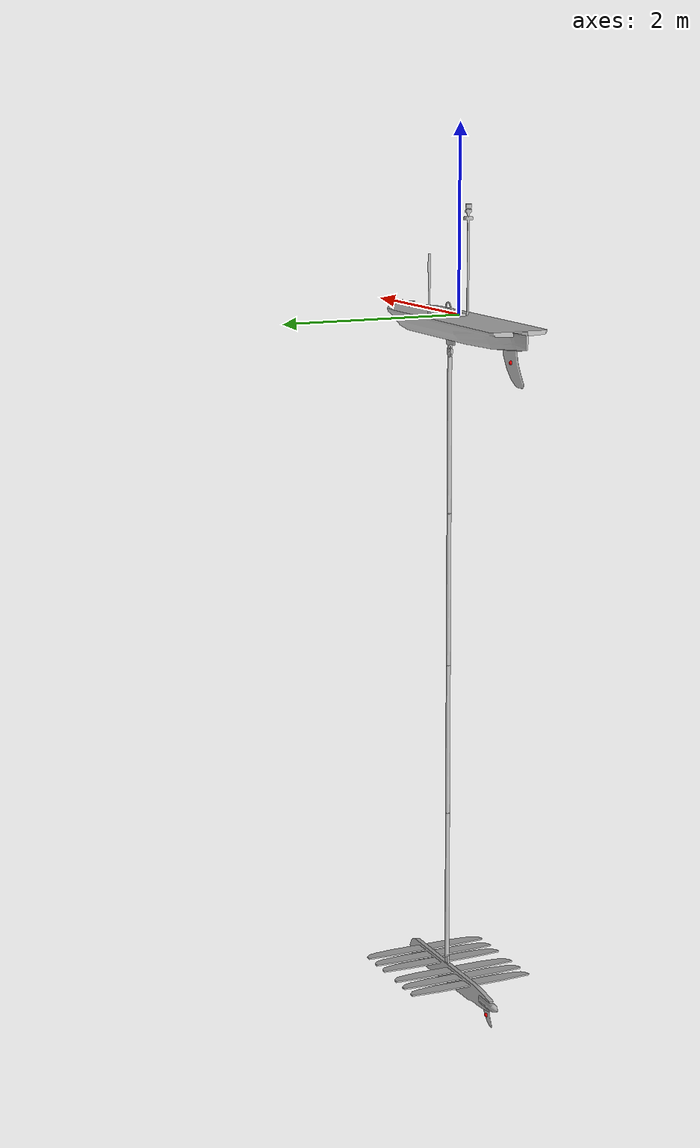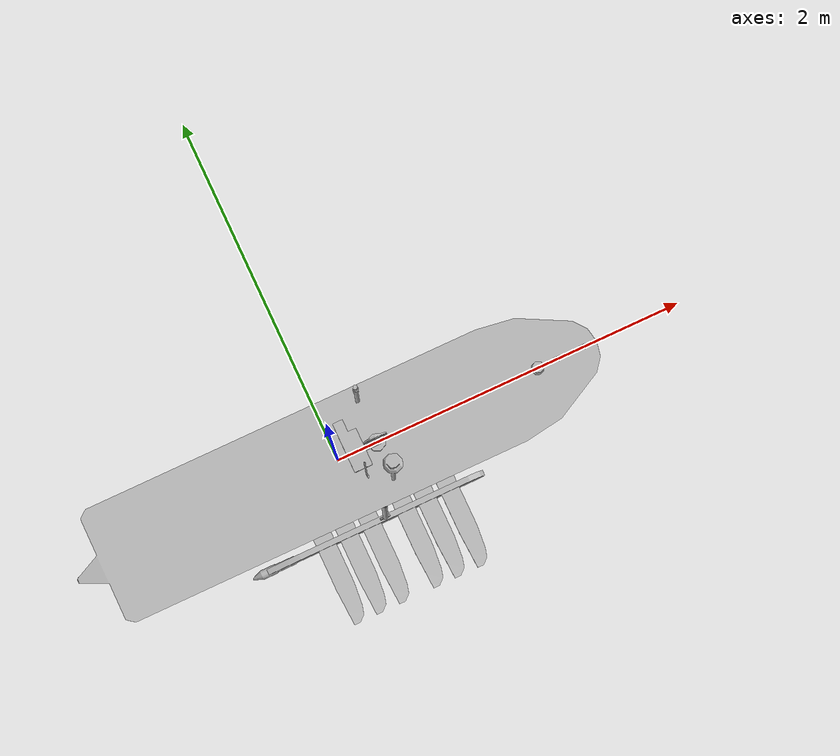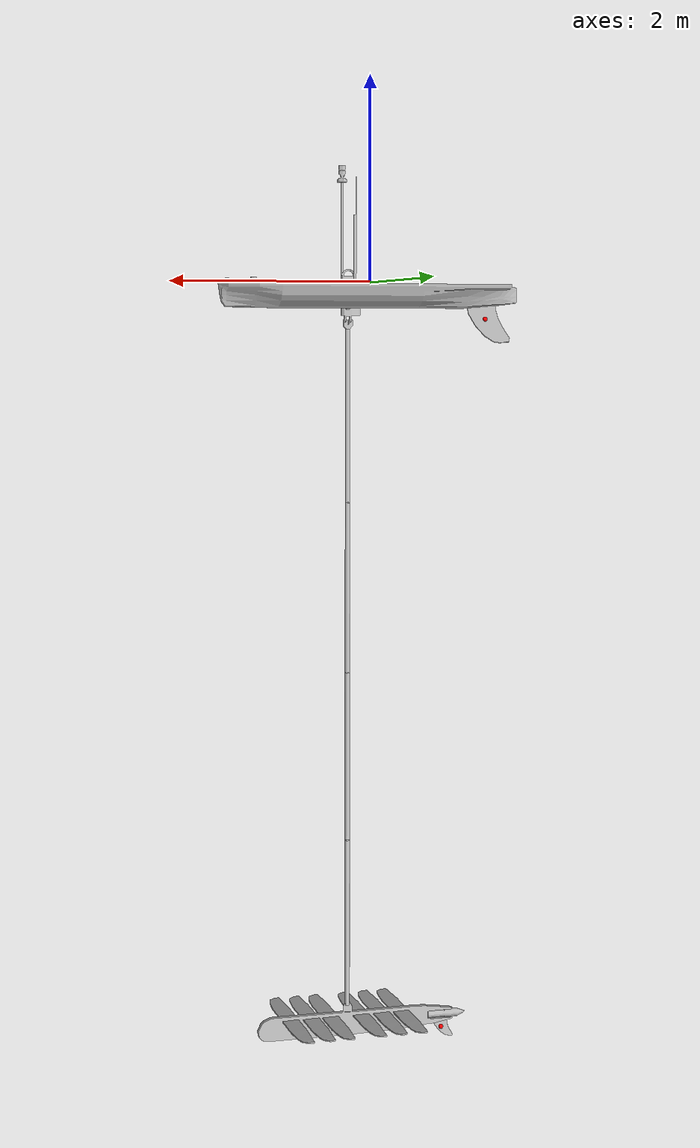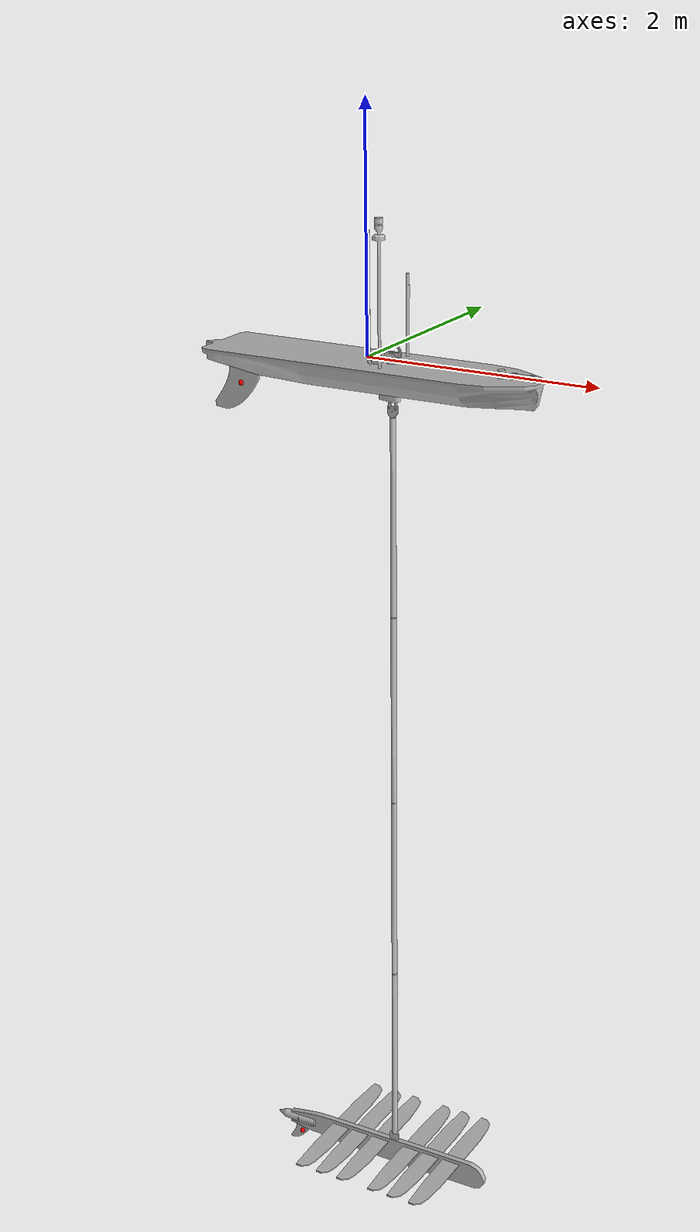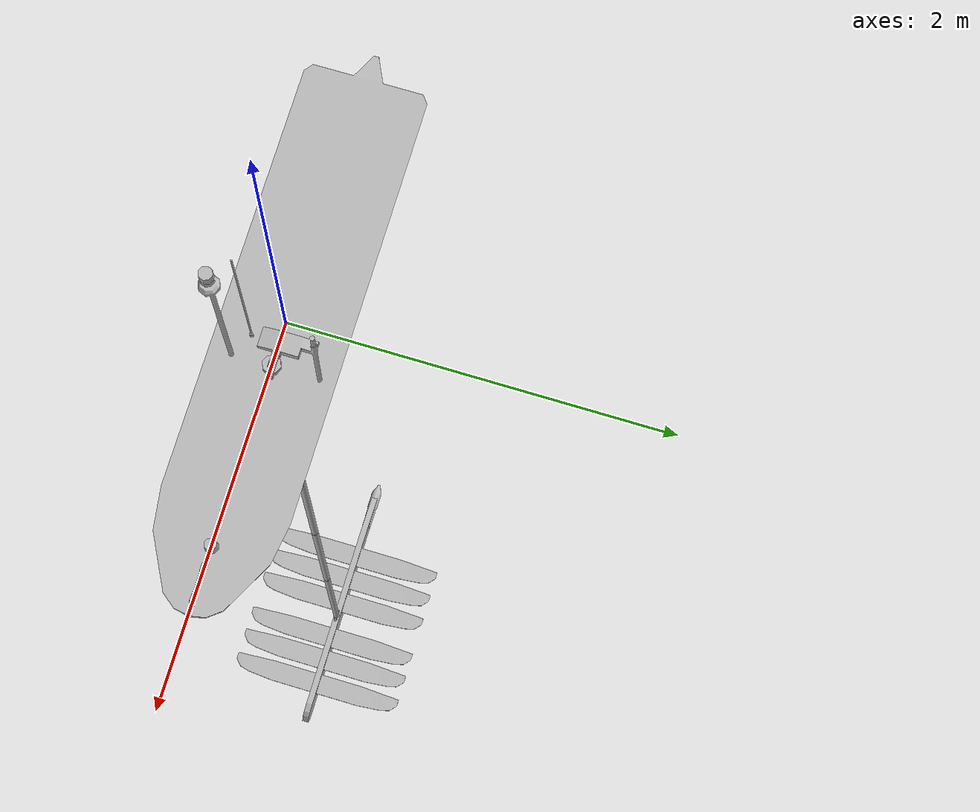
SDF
<?xml version="1.0"?>

<sdf version="1.9">
  <model name="wave_glider">

    <link name="wave_glider_float_link">
      <inertial>
        <pose>0 0 -0.13 0 0 0</pose>
          <mass>71</mass>
          <inertia>
            <ixx>4.194916667</ixx>
            <ixy>0</ixy>
            <ixz>0</ixz>
            <iyy>55.35278333</iyy>
            <iyz>0</iyz>
            <izz>58.92171667</izz>
          </inertia>
      </inertial>
      <collision name="collision">
        <geometry>
          <mesh>
            <scale>1.0 1.0 1.0</scale>
            <uri>model://glider_wave/mesh/wave_glider_hull_collision.stl</uri>
          </mesh>
        </geometry>
      </collision>
      <collision name="fin_collision">
        <geometry>
          <mesh>
            <scale>1.0 1.0 1.0</scale>
            <uri>model://glider_wave/mesh/wave_glider_fin_collision.stl</uri>
          </mesh>
        </geometry>
      </collision>
      <visual name="visual">
        <pose>0 0 0 0 0 0</pose>
        <geometry>
          <mesh>
            <scale>1.0 1.0 1.0</scale>
            <uri>model://glider_wave/mesh/wave_glider_hull.dae</uri>
          </mesh>
        </geometry>
      </visual>
      <visual name="fin_visual">
        <pose>0 0 0 0 0 0</pose>
        <geometry>
          <mesh>
            <scale>1.0 1.0 1.0</scale>
            <uri>model://glider_wave/mesh/wave_glider_fin.dae</uri>
          </mesh>
        </geometry>
      </visual>
      <visual name="sensors_visual">
        <geometry>
          <mesh>
            <scale>1.0 1.0 1.0</scale>
            <uri>model://glider_wave/mesh/wave_glider_sensors.dae</uri>
          </mesh>
        </geometry>
      </visual>
      <visual name="umbilical_connection_visual">
        <geometry>
          <mesh>
            <scale>1.0 1.0 1.0</scale>
            <uri>model://glider_wave/mesh/wave_glider_umbilical_connection.dae</uri>
          </mesh>
        </geometry>
      </visual>
      <!-- leave for debugging centre of pressure -->
      <visual name="cp_fin_visual">
        <pose>-1.195 0 -0.357 0 0 0</pose>
        <geometry>
          <sphere>
            <radius>0.025</radius>
          </sphere>
        </geometry>
        <material>
          <ambient>1 0 0 1</ambient>
          <diffuse>1 0 0 1</diffuse>
          <specular>0.1 0.1 0.1 1</specular>
        </material>
      </visual>

      <sensor name="navsat_sensor" type="navsat">
        <always_on>1</always_on>
        <update_rate>30</update_rate>
      </sensor>

      <sensor name="imu_sensor" type="imu">
        <pose>0 0 0 3.141593 0 0</pose>
        <always_on>1</always_on>
        <update_rate>1000</update_rate>
      </sensor>
    </link>

    <link name="wave_glider_umbilical_joint_link">
      <inertial>
        <pose>0.23 0 -0.38 0 0 0</pose>
        <mass>0.5</mass>
        <inertia>
          <ixx>0.001</ixx>
          <ixy>0</ixy>
          <ixz>0</ixz>
          <iyy>0.001</iyy>
          <iyz>0</iyz>
          <izz>0.001</izz>
        </inertia>
      </inertial>
      <collision name="collision">
        <geometry>
          <box>
            <size>0.2 0.2 0.2</size>
          </box>
        </geometry>
      </collision>
      <visual name="visual">
        <geometry>
          <mesh>
            <scale>1.0 1.0 1.0</scale>
            <uri>model://glider_wave/mesh/wave_glider_umbilical_joint.dae</uri>
          </mesh>
        </geometry>
      </visual>
    </link>
    <joint name="wave_glider_umbilical_joint_joint" type="revolute">
        <pose>0.23 0 -0.38 0 0 0</pose>
        <child>wave_glider_umbilical_joint_link</child>
        <parent>wave_glider_float_link</parent>
        <axis>
          <limit>
            <lower>-0.8</lower>
            <upper>0.8</upper>
          </limit>
          <dynamics>
            <damping>0.1</damping>
          </dynamics>
          <xyz>1 0 0</xyz>
        </axis>
    </joint>

    <link name="wave_glider_umbilical1_link">
      <pose>0.23 0 -1.31 0 0 0</pose>
      <inertial>
          <mass>1</mass>
          <inertia>
            <ixx>0.240989583</ixx>
            <ixy>0</ixy>
            <ixz>0</ixz>
            <iyy>0.240989583</iyy>
            <iyz>0</iyz>
            <izz>0.0003125</izz>
          </inertia>
      </inertial>
      <collision name="collision">
        <geometry>
          <cylinder>
            <radius>0.024</radius>
            <length>1.7</length>
          </cylinder>
        </geometry>
      </collision>
      <visual name="visual">
        <geometry>
          <cylinder>
            <radius>0.024</radius>
            <length>1.7</length>
          </cylinder>
        </geometry>
      </visual>
    </link>
    <joint name="wave_glider_umbilical1_joint" type="revolute">
        <pose>0 0 0.85 0 0 0</pose>
        <child>wave_glider_umbilical1_link</child>
        <parent>wave_glider_umbilical_joint_joint</parent>
        <axis>
          <limit>
            <lower>-0.8</lower>
            <upper>0.8</upper>
          </limit>
          <dynamics>
            <damping>0.5</damping>
          </dynamics>
          <xyz>0 1 0</xyz>
        </axis>
    </joint>

    <link name="wave_glider_spring1_link">
      <pose relative_to="wave_glider_umbilical1_link">0 0 -0.85 0 0 0</pose>
      <inertial>
          <mass>0.1</mass>
          <inertia>
            <ixx>0.001</ixx>
            <ixy>0</ixy>
            <ixz>0</ixz>
            <iyy>0.001</iyy>
            <iyz>0</iyz>
            <izz>0.001</izz>
          </inertia>
      </inertial>
      <collision name="collision">
        <geometry>
          <cylinder>
            <radius>0.024</radius>
            <length>0.01</length>
          </cylinder>
        </geometry>
      </collision>
      <visual name="visual">
        <geometry>
          <cylinder>
            <radius>0.024</radius>
            <length>0.01</length>
          </cylinder>
        </geometry>
      </visual>
    </link>
    <joint name="wave_glider_spring1_joint" type="prismatic">
        <pose>0 0 0 0 0 0</pose>
        <child>wave_glider_spring1_link</child>
        <parent>wave_glider_umbilical1_link</parent>
        <axis>
          <limit>
            <lower>-0.25</lower>
            <upper>0.25</upper>
          </limit>
          <dynamics>
            <damping>0.01</damping>
            <spring_stiffness>1</spring_stiffness>
          </dynamics>
          <xyz>0 0 1</xyz>
        </axis>
    </joint>

    <link name="wave_glider_umbilical2_link">
      <pose relative_to="wave_glider_umbilical1_link">0 0 -1.7 0 0 0</pose>
      <inertial>
          <mass>1</mass>
          <inertia>
            <ixx>0.240989583</ixx>
            <ixy>0</ixy>
            <ixz>0</ixz>
            <iyy>0.240989583</iyy>
            <iyz>0</iyz>
            <izz>0.0003125</izz>
          </inertia>
      </inertial>
      <collision name="collision">
        <geometry>
          <cylinder>
            <radius>0.024</radius>
            <length>1.7</length>
          </cylinder>
        </geometry>
      </collision>
      <visual name="visual">
        <geometry>
          <cylinder>
            <radius>0.024</radius>
            <length>1.7</length>
          </cylinder>
        </geometry>
      </visual>
    </link>
    <joint name="wave_glider_umbilical2_joint" type="ball">
        <pose>0 0 0.85 0 0 0</pose>
        <child>wave_glider_umbilical2_link</child>
        <parent>wave_glider_spring1_link</parent>
        <axis>
          <limit>
            <lower>-0.8</lower>
            <upper>0.8</upper>
          </limit>
          <dynamics>
            <damping>0.5</damping>
          </dynamics>
          <xyz>0 1 0</xyz>
        </axis>
    </joint>

    <link name="wave_glider_spring2_link">
      <pose relative_to="wave_glider_umbilical2_link">0 0 -0.85 0 0 0</pose>
      <inertial>
          <mass>0.1</mass>
          <inertia>
            <ixx>0.001</ixx>
            <ixy>0</ixy>
            <ixz>0</ixz>
            <iyy>0.001</iyy>
            <iyz>0</iyz>
            <izz>0.001</izz>
          </inertia>
      </inertial>
      <collision name="collision">
        <geometry>
          <cylinder>
            <radius>0.024</radius>
            <length>0.01</length>
          </cylinder>
        </geometry>
      </collision>
      <visual name="visual">
        <geometry>
          <cylinder>
            <radius>0.024</radius>
            <length>0.01</length>
          </cylinder>
        </geometry>
      </visual>
    </link>
    <joint name="wave_glider_spring2_joint" type="prismatic">
        <pose>0 0 0 0 0 0</pose>
        <child>wave_glider_spring2_link</child>
        <parent>wave_glider_umbilical2_link</parent>
        <axis>
          <limit>
            <lower>-0.25</lower>
            <upper>0.25</upper>
          </limit>
          <dynamics>
            <damping>0.01</damping>
            <spring_stiffness>1</spring_stiffness>
          </dynamics>
          <xyz>0 0 1</xyz>
        </axis>
    </joint>

    <link name="wave_glider_umbilical3_link">
      <pose relative_to="wave_glider_umbilical2_link">0 0 -1.7 0 0 0</pose>
      <inertial>
          <mass>1</mass>
          <inertia>
            <ixx>0.240989583</ixx>
            <ixy>0</ixy>
            <ixz>0</ixz>
            <iyy>0.240989583</iyy>
            <iyz>0</iyz>
            <izz>0.0003125</izz>
          </inertia>
      </inertial>
      <collision name="collision">
        <geometry>
          <cylinder>
            <radius>0.024</radius>
            <length>1.7</length>
          </cylinder>
        </geometry>
      </collision>
      <visual name="visual">
        <geometry>
          <cylinder>
            <radius>0.024</radius>
            <length>1.7</length>
          </cylinder>
        </geometry>
      </visual>
    </link>
    <joint name="wave_glider_umbilical3_joint" type="ball">
        <pose>0 0 0.85 0 0 0</pose>
        <child>wave_glider_umbilical3_link</child>
        <parent>wave_glider_spring2_link</parent>
        <axis>
          <limit>
            <lower>-0.8</lower>
            <upper>0.8</upper>
          </limit>
          <dynamics>
            <damping>0.5</damping>
          </dynamics>
          <xyz>0 1 0</xyz>
        </axis>
    </joint>

    <link name="wave_glider_spring3_link">
      <pose relative_to="wave_glider_umbilical3_link">0 0 -0.85 0 0 0</pose>
      <inertial>
          <mass>0.1</mass>
          <inertia>
            <ixx>0.001</ixx>
            <ixy>0</ixy>
            <ixz>0</ixz>
            <iyy>0.001</iyy>
            <iyz>0</iyz>
            <izz>0.001</izz>
          </inertia>
      </inertial>
      <collision name="collision">
        <geometry>
          <cylinder>
            <radius>0.024</radius>
            <length>0.01</length>
          </cylinder>
        </geometry>
      </collision>
      <visual name="visual">
        <geometry>
          <cylinder>
            <radius>0.024</radius>
            <length>0.01</length>
          </cylinder>
        </geometry>
      </visual>
    </link>
    <joint name="wave_glider_spring3_joint" type="prismatic">
        <pose>0 0 0 0 0 0</pose>
        <child>wave_glider_spring3_link</child>
        <parent>wave_glider_umbilical3_link</parent>
        <axis>
          <limit>
            <lower>-0.25</lower>
            <upper>0.25</upper>
          </limit>
          <dynamics>
            <damping>0.01</damping>
            <spring_stiffness>1</spring_stiffness>
          </dynamics>
          <xyz>0 0 1</xyz>
        </axis>
    </joint>

    <link name="wave_glider_umbilical4_link">
      <pose relative_to="wave_glider_umbilical3_link">0 0 -1.7 0 0 0</pose>
      <inertial>
          <mass>1</mass>
          <inertia>
            <ixx>0.240989583</ixx>
            <ixy>0</ixy>
            <ixz>0</ixz>
            <iyy>0.240989583</iyy>
            <iyz>0</iyz>
            <izz>0.0003125</izz>
          </inertia>
      </inertial>
      <collision name="collision">
        <geometry>
          <cylinder>
            <radius>0.024</radius>
            <length>1.7</length>
          </cylinder>
        </geometry>
      </collision>
      <visual name="visual">
        <geometry>
          <cylinder>
            <radius>0.024</radius>
            <length>1.7</length>
          </cylinder>
        </geometry>
      </visual>
    </link>
    <joint name="wave_glider_umbilical4_joint" type="ball">
        <pose>0 0 0.85 0 0 0</pose>
        <child>wave_glider_umbilical4_link</child>
        <parent>wave_glider_spring3_link</parent>
        <axis>
          <limit>
            <lower>-0.8</lower>
            <upper>0.8</upper>
          </limit>
          <dynamics>
            <damping>0.5</damping>
          </dynamics>
          <xyz>0 1 0</xyz>
        </axis>
    </joint>

    <link name="wave_glider_sub_body_link">
      <pose relative_to="wave_glider_umbilical4_link">0 0 -1.025 0 0 0</pose>
      <inertial>
          <pose>0.035 0 0 0 0 0</pose>
          <mass>56</mass>
          <inertia>
              <ixx>0.255959145</ixx>
              <ixy>0</ixy>
              <ixz>0</ixz>
              <iyy>18.9715005</iyy>
              <iyz>0</iyz>
              <izz>18.73885865</izz>
          </inertia>
      </inertial>
      <collision name="body_collision">
        <geometry>
          <mesh>
            <scale>1.0 1.0 1.0</scale>
            <uri>model://glider_wave/mesh/wave_glider_sub_body_collision_v2.stl</uri>
          </mesh>
        </geometry>
      </collision>
      <visual name="body_visual">
        <geometry>
          <mesh>
            <scale>1.0 1.0 1.0</scale>
            <uri>model://glider_wave/mesh/wave_glider_sub_body_v2.dae</uri>
          </mesh>
        </geometry>
      </visual>
      <!-- leave for debugging rudder position -->
      <!-- leave for debugging thruster position -->
      <!-- leave for debugging wing positions -->
    </link>
    <joint name="wave_glider_sub_body_joint" type="revolute">
      <pose>0 0 0.175 0 0 0</pose>
      <child>wave_glider_sub_body_link</child>
      <parent>wave_glider_umbilical4_link</parent>
      <axis>
        <limit>
          <lower>-0.8</lower>
          <upper>0.8</upper>
        </limit>
        <dynamics>
          <damping>0.1</damping>
        </dynamics>
        <xyz>0 1 0</xyz>
      </axis>
    </joint>

    <link name="wave_glider_sub_wing1_link">
      <pose relative_to="wave_glider_sub_body_link">0.59839 0 0.064323 0 0 0</pose>
      <inertial>
          <pose>0 0 0 0 0 0</pose>
          <mass>4</mass>
          <inertia>
              <ixx>0.691273013</ixx>
              <ixy>0</ixy>
              <ixz>0</ixz>
              <iyy>0.009369347</iyy>
              <iyz>0</iyz>
              <izz>0.700496333</izz>
          </inertia>
      </inertial>
      <collision name="wing_collision">
        <geometry>
          <box>
            <size>0.167 1.44 0.0148</size>
          </box>
        </geometry>
      </collision>
      <visual name="wing_visual">
        <geometry>
          <mesh>
            <scale>1.0 1.0 1.0</scale>
            <uri>model://glider_wave/mesh/wave_glider_sub_wing_v2.dae</uri>
          </mesh>
        </geometry>
      </visual>
      <!-- leave for debugging centre of pressure -->
      <visual name="cp_wing_visual">
        <pose>0.04175 0 0 0 0 0</pose>
        <geometry>
          <sphere>
            <radius>0.025</radius>
          </sphere>
        </geometry>
        <material>
          <ambient>1 0 0 1</ambient>
          <diffuse>1 0 0 1</diffuse>
          <specular>0.1 0.1 0.1 1</specular>
        </material>
      </visual>
    </link>
    <joint name="wave_glider_sub_wing1_joint" type="revolute">
      <pose relative_to="wave_glider_sub_body_link">0.64014 0 0.064323 0 0 0</pose>
      <child>wave_glider_sub_wing1_link</child>
      <parent>wave_glider_sub_body_link</parent>
      <axis>
        <limit>
          <lower>-0.8</lower>
          <upper>0.8</upper>
        </limit>
        <dynamics>
          <damping>0.01</damping>
          <spring_stiffness>1</spring_stiffness>
        </dynamics>
        <xyz>0 1 0</xyz>
      </axis>
    </joint>

    <link name="wave_glider_sub_wing2_link">
      <pose relative_to="wave_glider_sub_body_link">0.38399 0 0.064323 0 0 0</pose>
      <inertial>
          <pose>0 0 0 0 0 0</pose>
          <mass>4</mass>
          <inertia>
              <ixx>0.691273013</ixx>
              <ixy>0</ixy>
              <ixz>0</ixz>
              <iyy>0.009369347</iyy>
              <iyz>0</iyz>
              <izz>0.700496333</izz>
          </inertia>
      </inertial>
      <collision name="wing_collision">
        <geometry>
          <box>
            <size>0.167 1.44 0.0148</size>
          </box>
        </geometry>
      </collision>
      <visual name="wing_visual">
        <geometry>
          <mesh>
            <scale>1.0 1.0 1.0</scale>
            <uri>model://glider_wave/mesh/wave_glider_sub_wing_v2.dae</uri>
          </mesh>
        </geometry>
      </visual>
      <!-- leave for debugging centre of pressure -->
      <visual name="cp_wing_visual">
        <pose>0.04175 0 0 0 0 0</pose>
        <geometry>
          <sphere>
            <radius>0.025</radius>
          </sphere>
        </geometry>
        <material>
          <ambient>1 0 0 1</ambient>
          <diffuse>1 0 0 1</diffuse>
          <specular>0.1 0.1 0.1 1</specular>
        </material>
      </visual>
    </link>
    <joint name="wave_glider_sub_wing2_joint" type="revolute">
      <pose relative_to="wave_glider_sub_body_link">0.42574 0 0.064323 0 0 0</pose>
      <child>wave_glider_sub_wing2_link</child>
      <parent>wave_glider_sub_body_link</parent>
      <axis>
        <limit>
          <lower>-0.8</lower>
          <upper>0.8</upper>
        </limit>
        <dynamics>
          <damping>0.01</damping>
          <spring_stiffness>1</spring_stiffness>
        </dynamics>
        <xyz>0 1 0</xyz>
      </axis>
    </joint>

    <link name="wave_glider_sub_wing3_link">
      <pose relative_to="wave_glider_sub_body_link">0.18322 0 0.064323 0 0 0</pose>
      <inertial>
          <pose>0 0 0 0 0 0</pose>
          <mass>4</mass>
          <inertia>
              <ixx>0.691273013</ixx>
              <ixy>0</ixy>
              <ixz>0</ixz>
              <iyy>0.009369347</iyy>
              <iyz>0</iyz>
              <izz>0.700496333</izz>
          </inertia>
      </inertial>
      <collision name="wing_collision">
        <geometry>
          <box>
            <size>0.167 1.44 0.0148</size>
          </box>
        </geometry>
      </collision>
      <visual name="wing_visual">
        <geometry>
          <mesh>
            <scale>1.0 1.0 1.0</scale>
            <uri>model://glider_wave/mesh/wave_glider_sub_wing_v2.dae</uri>
          </mesh>
        </geometry>
      </visual>
      <!-- leave for debugging centre of pressure -->
      <visual name="cp_wing_visual">
        <pose>0.04175 0 0 0 0 0</pose>
        <geometry>
          <sphere>
            <radius>0.025</radius>
          </sphere>
        </geometry>
        <material>
          <ambient>1 0 0 1</ambient>
          <diffuse>1 0 0 1</diffuse>
          <specular>0.1 0.1 0.1 1</specular>
        </material>
      </visual>
    </link>
    <joint name="wave_glider_sub_wing3_joint" type="revolute">
      <pose relative_to="wave_glider_sub_body_link">0.22497 0 0.064323 0 0 0</pose>
      <child>wave_glider_sub_wing3_link</child>
      <parent>wave_glider_sub_body_link</parent>
      <axis>
        <limit>
          <lower>-0.8</lower>
          <upper>0.8</upper>
        </limit>
        <dynamics>
          <damping>0.01</damping>
          <spring_stiffness>1</spring_stiffness>
        </dynamics>
        <xyz>0 1 0</xyz>
      </axis>
    </joint>

    <link name="wave_glider_sub_wing4_link">
      <pose relative_to="wave_glider_sub_body_link">-0.13839 0 0.064323 0 0 0</pose>
      <inertial>
          <pose>0 0 0 0 0 0</pose>
          <mass>4</mass>
          <inertia>
              <ixx>0.691273013</ixx>
              <ixy>0</ixy>
              <ixz>0</ixz>
              <iyy>0.009369347</iyy>
              <iyz>0</iyz>
              <izz>0.700496333</izz>
          </inertia>
      </inertial>
      <collision name="wing_collision">
        <geometry>
          <box>
            <size>0.167 1.44 0.0148</size>
          </box>
        </geometry>
      </collision>
      <visual name="wing_visual">
        <geometry>
          <mesh>
            <scale>1.0 1.0 1.0</scale>
            <uri>model://glider_wave/mesh/wave_glider_sub_wing_v2.dae</uri>
          </mesh>
        </geometry>
      </visual>
      <!-- leave for debugging centre of pressure -->
      <visual name="cp_wing_visual">
        <pose>0.04175 0 0 0 0 0</pose>
        <geometry>
          <sphere>
            <radius>0.025</radius>
          </sphere>
        </geometry>
        <material>
          <ambient>1 0 0 1</ambient>
          <diffuse>1 0 0 1</diffuse>
          <specular>0.1 0.1 0.1 1</specular>
        </material>
      </visual>
    </link>
    <joint name="wave_glider_sub_wing4_joint" type="revolute">
      <pose relative_to="wave_glider_sub_body_link">-0.09664 0 0.064323 0 0 0</pose>
      <child>wave_glider_sub_wing4_link</child>
      <parent>wave_glider_sub_body_link</parent>
      <axis>
        <limit>
          <lower>-0.8</lower>
          <upper>0.8</upper>
        </limit>
        <dynamics>
          <damping>0.01</damping>
          <spring_stiffness>1</spring_stiffness>
        </dynamics>
        <xyz>0 1 0</xyz>
      </axis>
    </joint>

    <link name="wave_glider_sub_wing5_link">
      <pose relative_to="wave_glider_sub_body_link">-0.3528 0 0.064323 0 0 0</pose>
      <inertial>
          <pose>0 0 0 0 0 0</pose>
          <mass>4</mass>
          <inertia>
              <ixx>0.691273013</ixx>
              <ixy>0</ixy>
              <ixz>0</ixz>
              <iyy>0.009369347</iyy>
              <iyz>0</iyz>
              <izz>0.700496333</izz>
          </inertia>
      </inertial>
      <collision name="wing_collision">
        <geometry>
          <box>
            <size>0.167 1.44 0.0148</size>
          </box>
        </geometry>
      </collision>
      <visual name="wing_visual">
        <geometry>
          <mesh>
            <scale>1.0 1.0 1.0</scale>
            <uri>model://glider_wave/mesh/wave_glider_sub_wing_v2.dae</uri>
          </mesh>
        </geometry>
      </visual>
      <!-- leave for debugging centre of pressure -->
      <visual name="cp_wing_visual">
        <pose>0.04175 0 0 0 0 0</pose>
        <geometry>
          <sphere>
            <radius>0.025</radius>
          </sphere>
        </geometry>
        <material>
          <ambient>1 0 0 1</ambient>
          <diffuse>1 0 0 1</diffuse>
          <specular>0.1 0.1 0.1 1</specular>
        </material>
      </visual>
    </link>
    <joint name="wave_glider_sub_wing5_joint" type="revolute">
      <pose relative_to="wave_glider_sub_body_link">-0.31105 0 0.064323 0 0 0</pose>
      <child>wave_glider_sub_wing5_link</child>
      <parent>wave_glider_sub_body_link</parent>
      <axis>
        <limit>
          <lower>-0.8</lower>
          <upper>0.8</upper>
        </limit>
        <dynamics>
          <damping>0.01</damping>
          <spring_stiffness>1</spring_stiffness>
        </dynamics>
        <xyz>0 1 0</xyz>
      </axis>
    </joint>

    <link name="wave_glider_sub_wing6_link">
      <pose relative_to="wave_glider_sub_body_link">-0.56136 0 0.064323 0 0 0</pose>
      <inertial>
          <pose>0 0 0 0 0 0</pose>
          <mass>4</mass>
          <inertia>
              <ixx>0.691273013</ixx>
              <ixy>0</ixy>
              <ixz>0</ixz>
              <iyy>0.009369347</iyy>
              <iyz>0</iyz>
              <izz>0.700496333</izz>
          </inertia>
      </inertial>
      <collision name="wing_collision">
        <geometry>
          <box>
            <size>0.167 1.44 0.0148</size>
          </box>
        </geometry>
      </collision>
      <visual name="wing_visual">
        <geometry>
          <mesh>
            <scale>1.0 1.0 1.0</scale>
            <uri>model://glider_wave/mesh/wave_glider_sub_wing_v2.dae</uri>
          </mesh>
        </geometry>
      </visual>
      <!-- leave for debugging centre of pressure -->
      <visual name="cp_wing_visual">
        <pose>0.04175 0 0 0 0 0</pose>
        <geometry>
          <sphere>
            <radius>0.025</radius>
          </sphere>
        </geometry>
        <material>
          <ambient>1 0 0 1</ambient>
          <diffuse>1 0 0 1</diffuse>
          <specular>0.1 0.1 0.1 1</specular>
        </material>
      </visual>
    </link>
    <joint name="wave_glider_sub_wing6_joint" type="revolute">
      <pose relative_to="wave_glider_sub_body_link">-0.51961 0 0.064323 0 0 0</pose>
      <child>wave_glider_sub_wing6_link</child>
      <parent>wave_glider_sub_body_link</parent>
      <axis>
        <limit>
          <lower>-0.8</lower>
          <upper>0.8</upper>
        </limit>
        <dynamics>
          <damping>0.01</damping>
          <spring_stiffness>1</spring_stiffness>
        </dynamics>
        <xyz>0 1 0</xyz>
      </axis>
    </joint>

    <link name="wave_glider_sub_thruster_link">
      <pose relative_to="wave_glider_sub_body_link" degrees="true">-0.856622 0 0 0 -90 0</pose>
      <inertial>
          <pose>0 0 0.1975 0 0 0</pose>
          <mass>1</mass>
          <inertia>
              <ixx>0.013428506</ixx>
              <ixy>0</ixy>
              <ixz>0</ixz>
              <iyy>0.013428506</iyy>
              <iyz>0</iyz>
              <izz>0.000852845</izz>
          </inertia>
      </inertial>
      <collision name="thruster_collision">
        <pose>0 0 0.1975 0 0 0</pose>
        <geometry>
          <cylinder>
            <radius>0.0413</radius>
            <length>0.395</length>
          </cylinder>
        </geometry>
      </collision>
      <visual name="thruster_visual">
        <geometry>
          <mesh>
            <scale>1.0 1.0 1.0</scale>
            <uri>model://glider_wave/mesh/wave_glider_sub_thruster_v3.dae</uri>
          </mesh>
        </geometry>
      </visual>
    </link>
    <joint name="wave_glider_sub_thruster_joint" type="revolute">
      <pose relative_to="wave_glider_sub_body_link" degrees="true">-0.856622 0 0 0 -90 0</pose>
      <child>wave_glider_sub_thruster_link</child>
      <parent>wave_glider_sub_body_link</parent>
      <axis>
        <limit>
          <lower>-1.0E+16</lower>
          <upper>1.0E+16</upper>
        </limit>
        <dynamics>
          <damping>0.01</damping>
        </dynamics>
        <xyz>0 0 1</xyz>
      </axis>
    </joint>

    <link name="wave_glider_sub_rudder_link">
      <pose relative_to="wave_glider_sub_body_link" degrees="true">-0.99 0 -0.0785 0 8.65 0</pose>
      <inertial>
          <pose>0 0 -0.05375 0 0 0</pose>
          <mass>1</mass>
          <inertia>
              <ixx>0.003855063</ixx>
              <ixy>0</ixy>
              <ixz>0</ixz>
              <iyy>0.006462833</iyy>
              <iyz>0</iyz>
              <izz>0.00261373</izz>
          </inertia>
      </inertial>
      <collision name="rudder_collision">
        <geometry>
          <mesh>
            <scale>1.0 1.0 1.0</scale>
            <uri>model://glider_wave/mesh/wave_glider_sub_rudder_collision_v3.stl</uri>
          </mesh>
        </geometry>
      </collision>
      <visual name="rudder_visual">
        <geometry>
          <mesh>
            <scale>1.0 1.0 1.0</scale>
            <uri>model://glider_wave/mesh/wave_glider_sub_rudder_v3.dae</uri>
          </mesh>
        </geometry>
      </visual>
      <!-- leave for debugging centre of pressure -->
      <visual name="cp_rudder_visual">
        <pose>0 0 -0.062 0 0 0</pose>
        <geometry>
          <sphere>
            <radius>0.025</radius>
          </sphere>
        </geometry>
        <material>
          <ambient>1 0 0 1</ambient>
          <diffuse>1 0 0 1</diffuse>
          <specular>0.1 0.1 0.1 1</specular>
        </material>
      </visual>
    </link>
    <joint name="wave_glider_sub_rudder_joint" type="revolute">
      <pose relative_to="wave_glider_sub_rudder_link" degrees="true">0 0 0 0 0 0</pose>
      <child>wave_glider_sub_rudder_link</child>
      <parent>wave_glider_sub_body_link</parent>
      <axis>
        <limit>
          <lower>-0.78539816</lower>
          <upper>0.78539816</upper>
        </limit>
        <dynamics>
          <damping>0.01</damping>
        </dynamics>
        <xyz>0 0 1</xyz>
      </axis>
    </joint>

    <!-- Joint state and force plugins -->
    <plugin name="gz::sim::systems::JointStatePublisher"
        filename="gz-sim-joint-state-publisher-system">
    </plugin>

    <plugin name="gz::sim::systems::JointPositionController"
        filename="gz-sim-joint-position-controller-system">
      <joint_name>wave_glider_sub_rudder_joint</joint_name>
      <topic>rudder/cmd_pos</topic>
      <p_gain>40</p_gain>
      <i_gain>0.0</i_gain>
      <d_gain>0.1</d_gain>
      <i_max>1</i_max>
      <i_min>-1</i_min>
      <cmd_max>50</cmd_max>
      <cmd_min>-50</cmd_min>
    </plugin>

    <plugin name="gz::sim::systems::Thruster"
        filename="gz-sim-thruster-system">
      <namespace></namespace>
      <joint_name>wave_glider_sub_thruster_joint</joint_name>
      <topic>thruster/cmd_vel</topic>
      <use_angvel_cmd>1</use_angvel_cmd>
      <fluid_density>1025</fluid_density>
      <propeller_diameter>0.1</propeller_diameter>
      <thrust_coefficient>-0.1</thrust_coefficient>
    </plugin>

    <!-- Fin lift-drag -->
    <plugin name="gz::sim::systems::FoilLiftDrag"
        filename="asv_sim2-foil-lift-drag-system">
      <a0>0.0</a0>
      <cla>6.2832</cla>
      <alpha_stall>0.1592</alpha_stall>
      <cla_stall>-0.7083</cla_stall>
      <cda>0.63662</cda>
      <area>0.092</area>
      <fluid_density>1025</fluid_density>
      <forward>1 0 0</forward>
      <upward>0 1 0</upward>
      <cp>-1.195 0 -0.357</cp>
      <link_name>wave_glider_float_link</link_name>
      <radial_symmetry>1</radial_symmetry>
      <topic>lift_drag</topic>
    </plugin>

    <!-- Rudder lift-drag -->
    <plugin name="gz::sim::systems::FoilLiftDrag"
        filename="asv_sim2-foil-lift-drag-system">
      <a0>0.0</a0>
      <cla>6.2832</cla>
      <alpha_stall>0.1592</alpha_stall>
      <cla_stall>-0.7083</cla_stall>
      <cda>0.63662</cda>
      <area>0.1</area>
      <fluid_density>1025</fluid_density>
      <forward>1 0 0</forward>
      <upward>0 1 0</upward>
      <cp>0 0 -0.062</cp>
      <link_name>wave_glider_sub_rudder_link</link_name>
      <radial_symmetry>1</radial_symmetry>
      <topic>lift_drag</topic>
    </plugin>

    <!-- Wing lift-drag -->
    <plugin name="gz::sim::systems::FoilLiftDrag"
        filename="asv_sim2-foil-lift-drag-system">
      <a0>0.0</a0>
      <cla>6.2832</cla>
      <alpha_stall>0.1592</alpha_stall>
      <cla_stall>-0.7083</cla_stall>
      <cda>0.63662</cda>
      <area>0.24</area>
      <fluid_density>1025</fluid_density>
      <forward>1 0 0</forward>
      <upward>0 0 1</upward>
      <cp>0.04175 0 0</cp>
      <link_name>wave_glider_sub_wing1_link</link_name>
      <radial_symmetry>1</radial_symmetry>
      <topic>lift_drag</topic>
    </plugin>
    <plugin name="gz::sim::systems::FoilLiftDrag"
        filename="asv_sim2-foil-lift-drag-system">
      <a0>0.0</a0>
      <cla>6.2832</cla>
      <alpha_stall>0.1592</alpha_stall>
      <cla_stall>-0.7083</cla_stall>
      <cda>0.63662</cda>
      <area>0.24</area>
      <fluid_density>1025</fluid_density>
      <forward>1 0 0</forward>
      <upward>0 0 1</upward>
      <cp>0.04175 0 0</cp>
      <link_name>wave_glider_sub_wing2_link</link_name>
      <radial_symmetry>1</radial_symmetry>
      <topic>lift_drag</topic>
    </plugin>
    <plugin name="gz::sim::systems::FoilLiftDrag"
        filename="asv_sim2-foil-lift-drag-system">
      <a0>0.0</a0>
      <cla>6.2832</cla>
      <alpha_stall>0.1592</alpha_stall>
      <cla_stall>-0.7083</cla_stall>
      <cda>0.63662</cda>
      <area>0.24</area>
      <fluid_density>1025</fluid_density>
      <forward>1 0 0</forward>
      <upward>0 0 1</upward>
      <cp>0.04175 0 0</cp>
      <link_name>wave_glider_sub_wing3_link</link_name>
      <radial_symmetry>1</radial_symmetry>
      <topic>lift_drag</topic>
    </plugin>
    <plugin name="gz::sim::systems::FoilLiftDrag"
        filename="asv_sim2-foil-lift-drag-system">
      <a0>0.0</a0>
      <cla>6.2832</cla>
      <alpha_stall>0.1592</alpha_stall>
      <cla_stall>-0.7083</cla_stall>
      <cda>0.63662</cda>
      <area>0.24</area>
      <fluid_density>1025</fluid_density>
      <forward>1 0 0</forward>
      <upward>0 0 1</upward>
      <cp>0.04175 0 0</cp>
      <link_name>wave_glider_sub_wing4_link</link_name>
      <radial_symmetry>1</radial_symmetry>
      <topic>lift_drag</topic>
    </plugin>
    <plugin name="gz::sim::systems::FoilLiftDrag"
        filename="asv_sim2-foil-lift-drag-system">
      <a0>0.0</a0>
      <cla>6.2832</cla>
      <alpha_stall>0.1592</alpha_stall>
      <cla_stall>-0.7083</cla_stall>
      <cda>0.63662</cda>
      <area>0.24</area>
      <fluid_density>1025</fluid_density>
      <forward>1 0 0</forward>
      <upward>0 0 1</upward>
      <cp>0.04175 0 0</cp>
      <link_name>wave_glider_sub_wing5_link</link_name>
      <radial_symmetry>1</radial_symmetry>
      <topic>lift_drag</topic>
    </plugin>
    <plugin name="gz::sim::systems::FoilLiftDrag"
        filename="asv_sim2-foil-lift-drag-system">
      <a0>0.0</a0>
      <cla>6.2832</cla>
      <alpha_stall>0.1592</alpha_stall>
      <cla_stall>-0.7083</cla_stall>
      <cda>0.63662</cda>
      <area>0.24</area>
      <fluid_density>1025</fluid_density>
      <forward>1 0 0</forward>
      <upward>0 0 1</upward>
      <cp>0.04175 0 0</cp>
      <link_name>wave_glider_sub_wing6_link</link_name>
      <radial_symmetry>1</radial_symmetry>
      <topic>lift_drag</topic>
    </plugin>

    <!-- Hydrodynamics plugin -->
    <plugin
      filename="gz-waves1-hydrodynamics-system"
      name="gz::sim::systems::Hydrodynamics">

      <enable>wave_glider::wave_glider_float_link</enable>
      <enable>wave_glider::wave_glider_sub_body_link</enable>
      <enable>wave_glider::wave_glider_sub_wing1_link</enable>
      <enable>wave_glider::wave_glider_sub_wing2_link</enable>
      <enable>wave_glider::wave_glider_sub_wing3_link</enable>
      <enable>wave_glider::wave_glider_sub_wing4_link</enable>
      <enable>wave_glider::wave_glider_sub_wing5_link</enable>
      <enable>wave_glider::wave_glider_sub_wing6_link</enable>

      <hydrodynamics>

        <!-- Linear and Angular Damping -->

        <!-- 'Pressure' Drag -->
      </hydrodynamics>
    </plugin>

    <!-- ArduPilot plugin -->
    <plugin name="ArduPilotPlugin" filename="ArduPilotPlugin">
      <fdm_addr>127.0.0.1</fdm_addr>
      <fdm_port_in>9002</fdm_port_in>

      <connectionTimeoutMaxCount>5</connectionTimeoutMaxCount>
      <lock_step>1</lock_step>
      <gazeboXYZToNED>0 0 0 3.141593 0 1.57079632</gazeboXYZToNED>
      <modelXYZToAirplaneXForwardZDown>0 0 0 3.141593 0 0</modelXYZToAirplaneXForwardZDown>
      <imuName>wave_glider_float_link::imu_sensor</imuName>

      <control channel="0">
        <jointName>wave_glider_sub_rudder_joint</jointName>
        <useForce>1</useForce>
        <multiplier>1.570796</multiplier>
        <offset>-0.5</offset>
        <servo_max>2000</servo_max>
        <servo_min>1000</servo_min>
        <type>COMMAND</type>
        <cmd_topic>/rudder/cmd_pos</cmd_topic>
      </control>

      <!--
        SERVO3_FUNCTION 70 (Throttle)
        SERVO3_MAX 2000
        SERVO3_MIN 1000
        -->
      <control channel="2">
        <jointName>wave_glider_sub_thruster_joint</jointName>
        <useForce>1</useForce>
        <multiplier>500</multiplier>
        <offset>-0.5</offset>
        <type>COMMAND</type>
        <cmd_topic>/thruster/cmd_vel</cmd_topic>
      </control>
    </plugin>

  </model>
</sdf>
